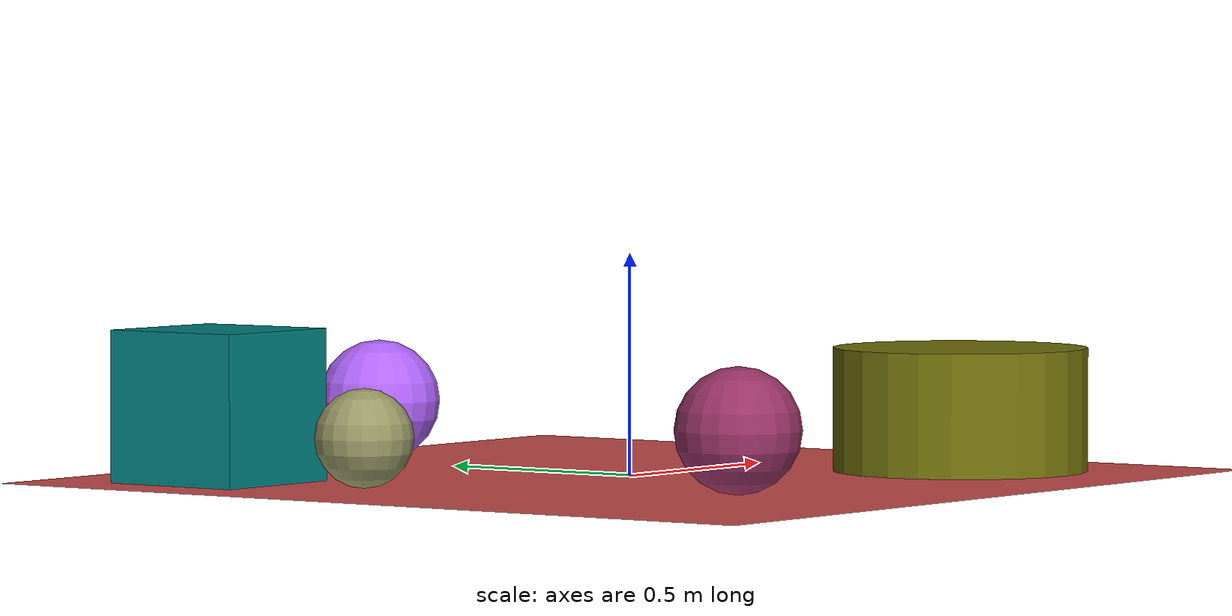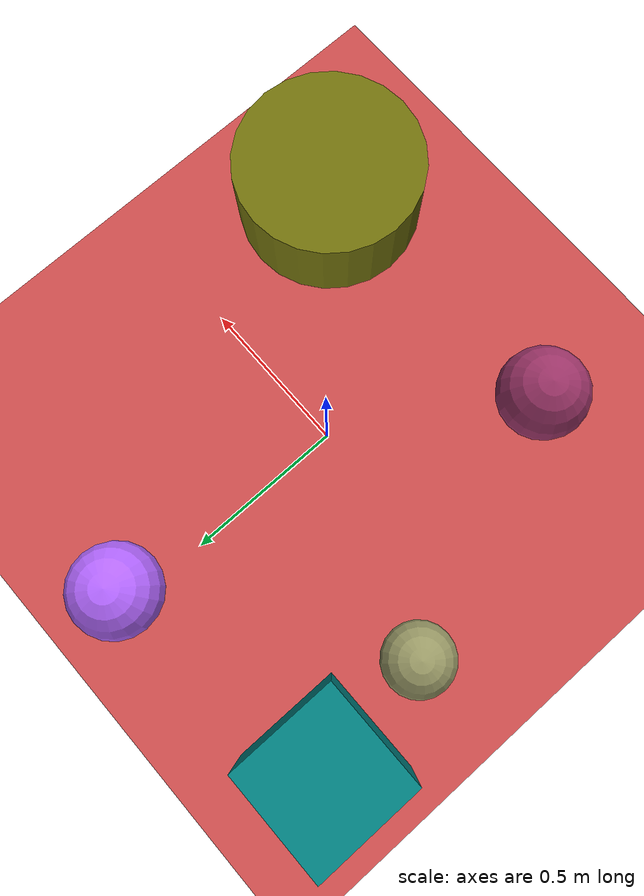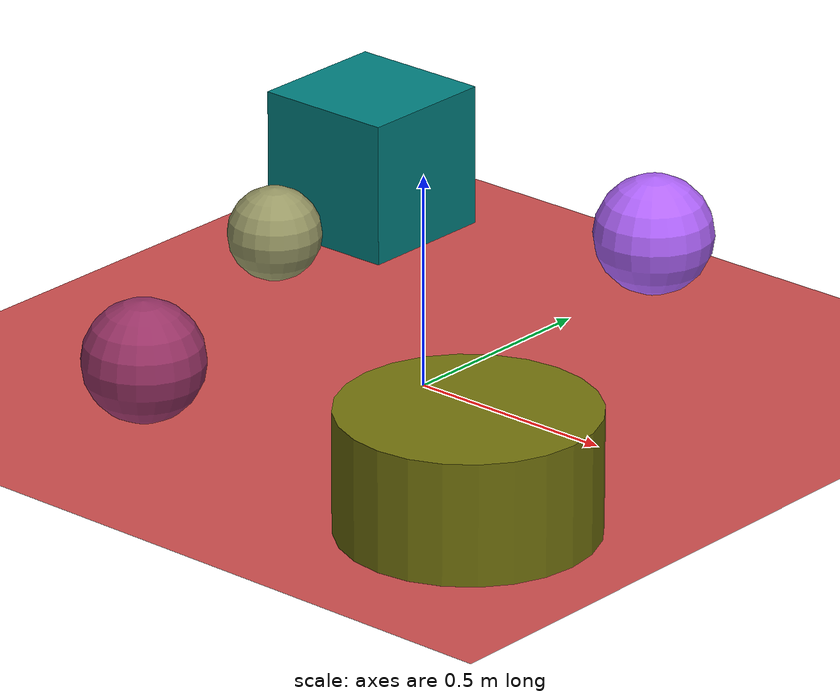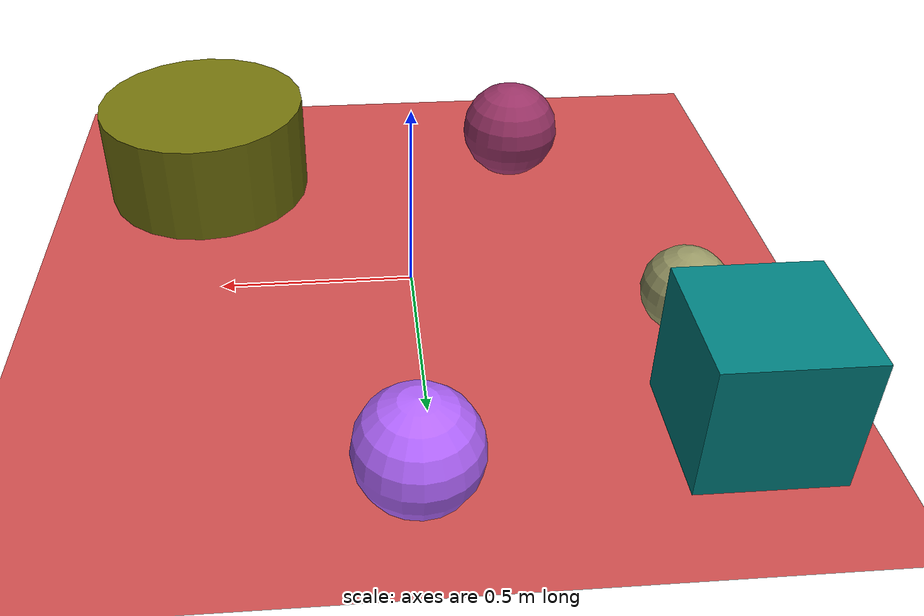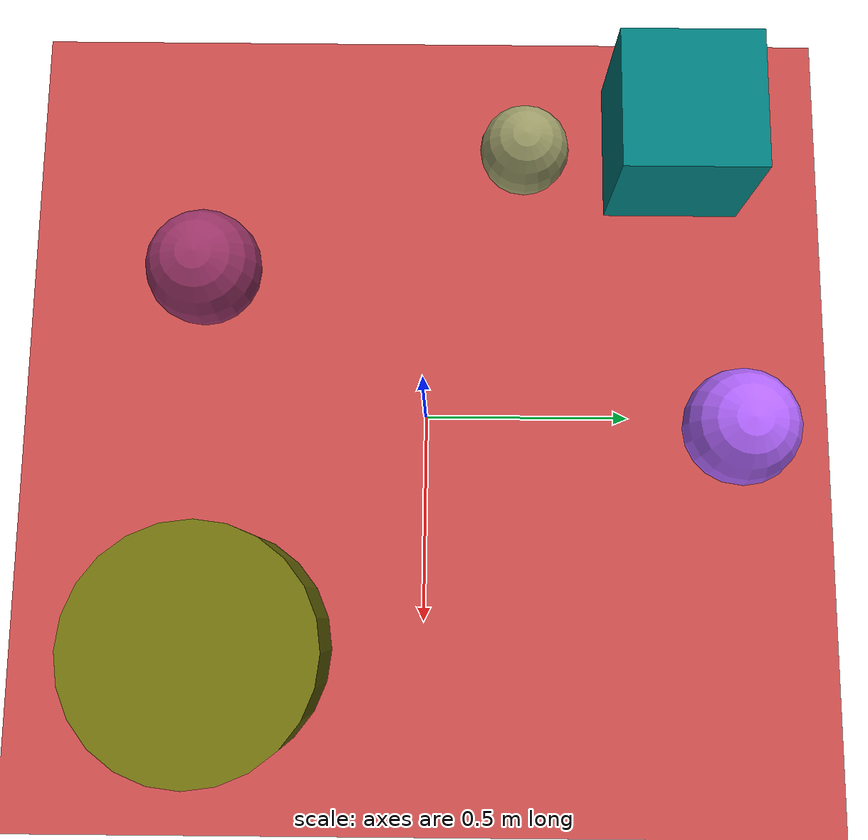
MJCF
<mujoco>
   <asset>
<texture type="skybox" builtin="gradient" rgb1="0.9 1.0 0.3" rgb2="0.8 1.0 0.2" width="256" height="256"/>
<texture name="gradient_0" builtin="gradient" rgb1="0.8 0.2 0.1" rgb2="0.1 0.7 0.0" width="200" height="200"/>
<texture name="flat_1" builtin="flat" rgb1="0.0 0.5 0.5" rgb2="0.0 0.5 0.5"  width="200" height="200"/>
<texture name="flat_2" builtin="flat" rgb1="0.6 0.6 0.4" rgb2="0.6 0.6 0.4"  width="200" height="200"/>
<texture name="flat_3" builtin="flat" rgb1="0.7 0.4 1.0" rgb2="0.7 0.4 1.0"  width="200" height="200"/>
<texture name="flat_4" builtin="flat" rgb1="0.6 0.2 0.4" rgb2="0.6 0.2 0.4"  width="200" height="200"/><material name="gradient_0_mat" reflectance="0" texture="gradient_0" texuniform="true"/>
<material name="flat_1_mat" reflectance="0" texture="flat_1" texuniform="true"/>
<material name="flat_2_mat" reflectance="0" texture="flat_2" texuniform="true"/>
<material name="flat_3_mat" reflectance="0" texture="flat_3" texuniform="true"/>
<material name="flat_4_mat" reflectance="0" texture="flat_4" texuniform="true"/>
   </asset>

   <worldbody>
      <light diffuse=".9 .9 .9" pos="0 0 3" dir="0 0 -1"/>
     <geom type="plane" size="1 1 0.1" rgba="0.8 0.3 0.3 1"/>
<geom type="cylinder" pos="0.57 -0.51 0.14" size="0.29 0.14 0.14" material="gradient_0_mat" />
<geom type="box" pos="-0.7 0.62 0.17" size="0.17 0.17 0.17" material="flat_1_mat" />
<geom type="sphere" pos="-0.66 0.24 0.11" size="0.11 0.11 0.11" material="flat_2_mat" />
<geom type="sphere" pos="0.04 0.75 0.14" size="0.14 0.14 0.14" material="flat_3_mat" />
<geom type="sphere" pos="-0.34 -0.54 0.14" size="0.14 0.14 0.14" material="flat_4_mat" /><camera euler="60 0 180" fovy="60" name="camera_a" pos="0 -1.5 1"></camera>   </worldbody>
</mujoco>
